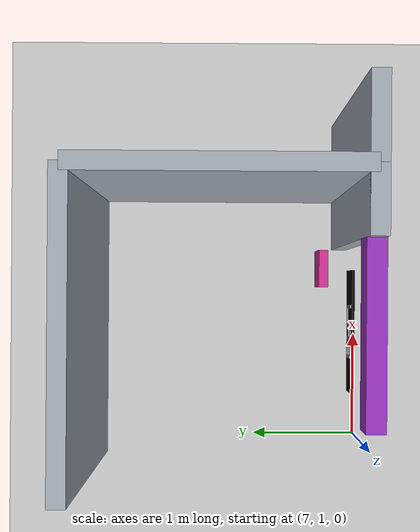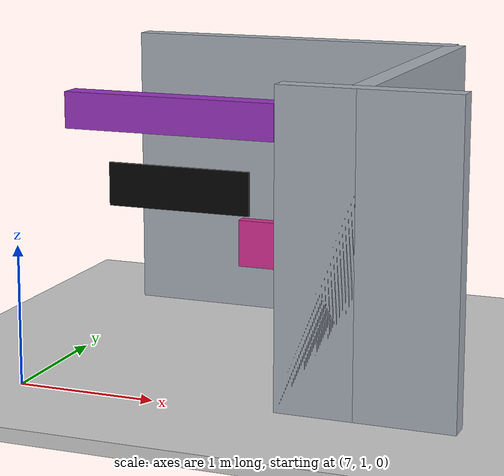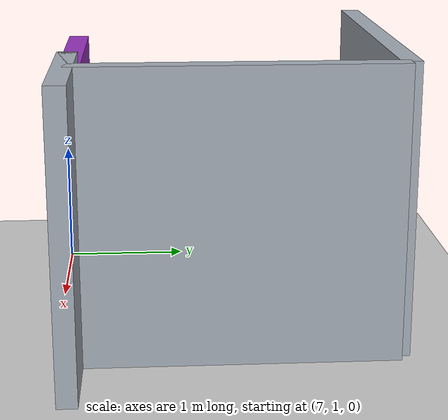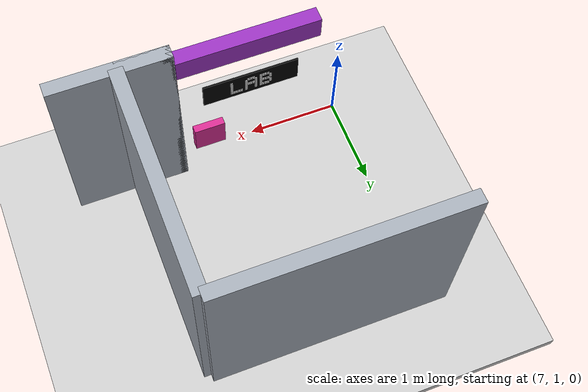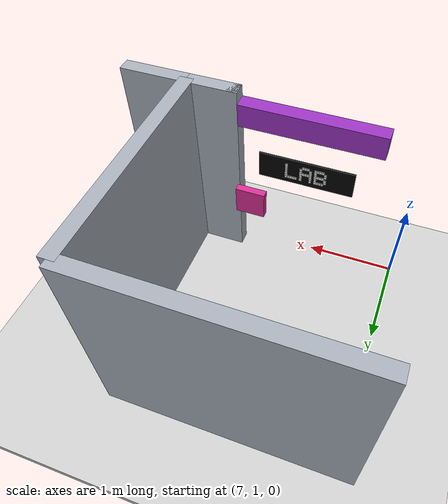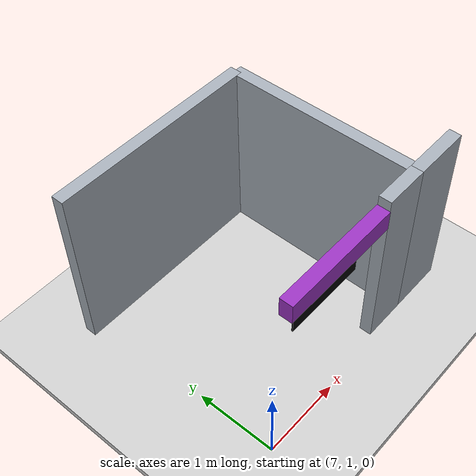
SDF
<sdf version="1.9">
 <world name="default">
  <model name="ground_plane">
   <static>true</static>
   <pose>5.05 0 -0.05 0 0 0</pose>
   <link name="body">
    <collision name="collision"><geometry><box><size>14.1 12 0.1</size></box></geometry></collision>
    <visual name="visual">
     <geometry><box><size>14.1 12 0.1</size></box></geometry>
     <material><ambient>0.8 0.8 0.8 1</ambient><diffuse>0.8 0.8 0.8 1</diffuse></material>
    </visual>
   </link>
  </model>
  <model name="room_1_2_1">
   <static>true</static>
   <pose>9.4 2.3499999999999996 1.1 0 0 0</pose>
   <link name="body">
    <collision name="collision"><geometry><box><size>0.15 2.4 2.2</size></box></geometry></collision>
    <visual name="visual">
     <geometry><box><size>0.15 2.4 2.2</size></box></geometry>
     <material><ambient>0.65 0.68 0.72 1</ambient><diffuse>0.65 0.68 0.72 1</diffuse></material>
    </visual>
   </link>
  </model>
  <model name="room_end_1_2">
   <static>true</static>
   <pose>8.1 3.55 1.1 0 0 0</pose>
   <link name="body">
    <collision name="collision"><geometry><box><size>2.6 0.15 2.2</size></box></geometry></collision>
    <visual name="visual">
     <geometry><box><size>2.6 0.15 2.2</size></box></geometry>
     <material><ambient>0.65 0.68 0.72 1</ambient><diffuse>0.65 0.68 0.72 1</diffuse></material>
    </visual>
   </link>
  </model>
  <model name="jamb_1_2_1">
   <static>true</static>
   <pose>9.125 1.15 1.1 0 0 0</pose>
   <link name="body">
    <collision name="collision"><geometry><box><size>0.55 0.15 2.2</size></box></geometry></collision>
    <visual name="visual">
     <geometry><box><size>0.55 0.15 2.2</size></box></geometry>
     <material><ambient>0.65 0.68 0.72 1</ambient><diffuse>0.65 0.68 0.72 1</diffuse></material>
    </visual>
   </link>
  </model>
  <model name="hall_end_1">
   <static>true</static>
   <pose>9.475 1.15 1.1 0 0 0</pose>
   <link name="body">
    <collision name="collision"><geometry><box><size>1.25 0.15 2.2</size></box></geometry></collision>
    <visual name="visual">
     <geometry><box><size>1.25 0.15 2.2</size></box></geometry>
     <material><ambient>0.65 0.68 0.72 1</ambient><diffuse>0.65 0.68 0.72 1</diffuse></material>
    </visual>
   </link>
  </model>
  <model name="r3geo_base_r003_left_2_lintel">
   <static>true</static>
   <pose>8.1 1.15 1.95 0 0 0</pose>
   <link name="body">
    <collision name="collision"><geometry><box><size>1.5 0.16 0.25</size></box></geometry></collision>
    <visual name="visual">
     <geometry><box><size>1.5 0.16 0.25</size></box></geometry>
     <material><ambient>0.6 0.2 0.75 1</ambient><diffuse>0.6 0.2 0.75 1</diffuse></material>
    </visual>
   </link>
  </model>
  <model name="r3geo_base_r003_left_2_entrance_sign">
   <static>true</static>
   <pose>8.629999999999999 1.45 1.05 0 0 0</pose>
   <link name="body">
    <visual name="visual">
     <geometry><box><size>0.32 0.08 0.32</size></box></geometry>
     <material><ambient>0.84 0.18 0.57 1</ambient><diffuse>0.84 0.18 0.57 1</diffuse></material>
    </visual>
   </link>
  </model>
  <model name="readable_r3geo_base_r003_left_2_entrance_room">
   <static>true</static>
   <pose>8.1 1.25 1.43 0 0 3.14159265359</pose>
   <link name="lettering">
    <visual name="backboard">
     <geometry><box><size>1.02 0.018 0.3</size></box></geometry>
     <material>
      <ambient>.015 .015 .015 1</ambient>
      <diffuse>.015 .015 .015 1</diffuse>
      <emissive>.015 .015 .015 1</emissive>
     </material>
     <cast_shadows>false</cast_shadows>
    </visual>
    <visual name="letter_0_0_0">
     <pose>-0.208 -0.014 0.078 0 0 0</pose>
     <geometry><box><size>0.024439999999999996 0.008 0.024439999999999996</size></box></geometry>
     <material>
      <ambient>.96 .96 .96 1</ambient>
      <diffuse>.96 .96 .96 1</diffuse>
      <emissive>.96 .96 .96 1</emissive>
     </material>
     <cast_shadows>false</cast_shadows>
    </visual>
    <visual name="letter_0_1_0">
     <pose>-0.208 -0.014 0.052 0 0 0</pose>
     <geometry><box><size>0.024439999999999996 0.008 0.024439999999999996</size></box></geometry>
     <material>
      <ambient>.96 .96 .96 1</ambient>
      <diffuse>.96 .96 .96 1</diffuse>
      <emissive>.96 .96 .96 1</emissive>
     </material>
     <cast_shadows>false</cast_shadows>
    </visual>
    <visual name="letter_0_2_0">
     <pose>-0.208 -0.014 0.026 0 0 0</pose>
     <geometry><box><size>0.024439999999999996 0.008 0.024439999999999996</size></box></geometry>
     <material>
      <ambient>.96 .96 .96 1</ambient>
      <diffuse>.96 .96 .96 1</diffuse>
      <emissive>.96 .96 .96 1</emissive>
     </material>
     <cast_shadows>false</cast_shadows>
    </visual>
    <visual name="letter_0_3_0">
     <pose>-0.208 -0.014 0 0 0 0</pose>
     <geometry><box><size>0.024439999999999996 0.008 0.024439999999999996</size></box></geometry>
     <material>
      <ambient>.96 .96 .96 1</ambient>
      <diffuse>.96 .96 .96 1</diffuse>
      <emissive>.96 .96 .96 1</emissive>
     </material>
     <cast_shadows>false</cast_shadows>
    </visual>
    <visual name="letter_0_4_0">
     <pose>-0.208 -0.014 -0.026 0 0 0</pose>
     <geometry><box><size>0.024439999999999996 0.008 0.024439999999999996</size></box></geometry>
     <material>
      <ambient>.96 .96 .96 1</ambient>
      <diffuse>.96 .96 .96 1</diffuse>
      <emissive>.96 .96 .96 1</emissive>
     </material>
     <cast_shadows>false</cast_shadows>
    </visual>
    <visual name="letter_0_5_0">
     <pose>-0.208 -0.014 -0.052 0 0 0</pose>
     <geometry><box><size>0.024439999999999996 0.008 0.024439999999999996</size></box></geometry>
     <material>
      <ambient>.96 .96 .96 1</ambient>
      <diffuse>.96 .96 .96 1</diffuse>
      <emissive>.96 .96 .96 1</emissive>
     </material>
     <cast_shadows>false</cast_shadows>
    </visual>
    <visual name="letter_0_6_0">
     <pose>-0.208 -0.014 -0.078 0 0 0</pose>
     <geometry><box><size>0.024439999999999996 0.008 0.024439999999999996</size></box></geometry>
     <material>
      <ambient>.96 .96 .96 1</ambient>
      <diffuse>.96 .96 .96 1</diffuse>
      <emissive>.96 .96 .96 1</emissive>
     </material>
     <cast_shadows>false</cast_shadows>
    </visual>
    <visual name="letter_0_6_1">
     <pose>-0.182 -0.014 -0.078 0 0 0</pose>
     <geometry><box><size>0.024439999999999996 0.008 0.024439999999999996</size></box></geometry>
     <material>
      <ambient>.96 .96 .96 1</ambient>
      <diffuse>.96 .96 .96 1</diffuse>
      <emissive>.96 .96 .96 1</emissive>
     </material>
     <cast_shadows>false</cast_shadows>
    </visual>
    <visual name="letter_0_6_2">
     <pose>-0.156 -0.014 -0.078 0 0 0</pose>
     <geometry><box><size>0.024439999999999996 0.008 0.024439999999999996</size></box></geometry>
     <material>
      <ambient>.96 .96 .96 1</ambient>
      <diffuse>.96 .96 .96 1</diffuse>
      <emissive>.96 .96 .96 1</emissive>
     </material>
     <cast_shadows>false</cast_shadows>
    </visual>
    <visual name="letter_0_6_3">
     <pose>-0.13 -0.014 -0.078 0 0 0</pose>
     <geometry><box><size>0.024439999999999996 0.008 0.024439999999999996</size></box></geometry>
     <material>
      <ambient>.96 .96 .96 1</ambient>
      <diffuse>.96 .96 .96 1</diffuse>
      <emissive>.96 .96 .96 1</emissive>
     </material>
     <cast_shadows>false</cast_shadows>
    </visual>
    <visual name="letter_0_6_4">
     <pose>-0.104 -0.014 -0.078 0 0 0</pose>
     <geometry><box><size>0.024439999999999996 0.008 0.024439999999999996</size></box></geometry>
     <material>
      <ambient>.96 .96 .96 1</ambient>
      <diffuse>.96 .96 .96 1</diffuse>
      <emissive>.96 .96 .96 1</emissive>
     </material>
     <cast_shadows>false</cast_shadows>
    </visual>
    <visual name="letter_1_0_1">
     <pose>-0.026 -0.014 0.078 0 0 0</pose>
     <geometry><box><size>0.024439999999999996 0.008 0.024439999999999996</size></box></geometry>
     <material>
      <ambient>.96 .96 .96 1</ambient>
      <diffuse>.96 .96 .96 1</diffuse>
      <emissive>.96 .96 .96 1</emissive>
     </material>
     <cast_shadows>false</cast_shadows>
    </visual>
    <visual name="letter_1_0_2">
     <pose>0 -0.014 0.078 0 0 0</pose>
     <geometry><box><size>0.024439999999999996 0.008 0.024439999999999996</size></box></geometry>
     <material>
      <ambient>.96 .96 .96 1</ambient>
      <diffuse>.96 .96 .96 1</diffuse>
      <emissive>.96 .96 .96 1</emissive>
     </material>
     <cast_shadows>false</cast_shadows>
    </visual>
    <visual name="letter_1_0_3">
     <pose>0.026 -0.014 0.078 0 0 0</pose>
     <geometry><box><size>0.024439999999999996 0.008 0.024439999999999996</size></box></geometry>
     <material>
      <ambient>.96 .96 .96 1</ambient>
      <diffuse>.96 .96 .96 1</diffuse>
      <emissive>.96 .96 .96 1</emissive>
     </material>
     <cast_shadows>false</cast_shadows>
    </visual>
    <visual name="letter_1_1_0">
     <pose>-0.052 -0.014 0.052 0 0 0</pose>
     <geometry><box><size>0.024439999999999996 0.008 0.024439999999999996</size></box></geometry>
     <material>
      <ambient>.96 .96 .96 1</ambient>
      <diffuse>.96 .96 .96 1</diffuse>
      <emissive>.96 .96 .96 1</emissive>
     </material>
     <cast_shadows>false</cast_shadows>
    </visual>
    <visual name="letter_1_1_4">
     <pose>0.052 -0.014 0.052 0 0 0</pose>
     <geometry><box><size>0.024439999999999996 0.008 0.024439999999999996</size></box></geometry>
     <material>
      <ambient>.96 .96 .96 1</ambient>
      <diffuse>.96 .96 .96 1</diffuse>
      <emissive>.96 .96 .96 1</emissive>
     </material>
     <cast_shadows>false</cast_shadows>
    </visual>
    <visual name="letter_1_2_0">
     <pose>-0.052 -0.014 0.026 0 0 0</pose>
     <geometry><box><size>0.024439999999999996 0.008 0.024439999999999996</size></box></geometry>
     <material>
      <ambient>.96 .96 .96 1</ambient>
      <diffuse>.96 .96 .96 1</diffuse>
      <emissive>.96 .96 .96 1</emissive>
     </material>
     <cast_shadows>false</cast_shadows>
    </visual>
    <visual name="letter_1_2_4">
     <pose>0.052 -0.014 0.026 0 0 0</pose>
     <geometry><box><size>0.024439999999999996 0.008 0.024439999999999996</size></box></geometry>
     <material>
      <ambient>.96 .96 .96 1</ambient>
      <diffuse>.96 .96 .96 1</diffuse>
      <emissive>.96 .96 .96 1</emissive>
     </material>
     <cast_shadows>false</cast_shadows>
    </visual>
    <visual name="letter_1_3_0">
     <pose>-0.052 -0.014 0 0 0 0</pose>
     <geometry><box><size>0.024439999999999996 0.008 0.024439999999999996</size></box></geometry>
     <material>
      <ambient>.96 .96 .96 1</ambient>
      <diffuse>.96 .96 .96 1</diffuse>
      <emissive>.96 .96 .96 1</emissive>
     </material>
     <cast_shadows>false</cast_shadows>
    </visual>
    <visual name="letter_1_3_1">
     <pose>-0.026 -0.014 0 0 0 0</pose>
     <geometry><box><size>0.024439999999999996 0.008 0.024439999999999996</size></box></geometry>
     <material>
      <ambient>.96 .96 .96 1</ambient>
      <diffuse>.96 .96 .96 1</diffuse>
      <emissive>.96 .96 .96 1</emissive>
     </material>
     <cast_shadows>false</cast_shadows>
    </visual>
    <visual name="letter_1_3_2">
     <pose>0 -0.014 0 0 0 0</pose>
     <geometry><box><size>0.024439999999999996 0.008 0.024439999999999996</size></box></geometry>
     <material>
      <ambient>.96 .96 .96 1</ambient>
      <diffuse>.96 .96 .96 1</diffuse>
      <emissive>.96 .96 .96 1</emissive>
     </material>
     <cast_shadows>false</cast_shadows>
    </visual>
    <visual name="letter_1_3_3">
     <pose>0.026 -0.014 0 0 0 0</pose>
     <geometry><box><size>0.024439999999999996 0.008 0.024439999999999996</size></box></geometry>
     <material>
      <ambient>.96 .96 .96 1</ambient>
      <diffuse>.96 .96 .96 1</diffuse>
      <emissive>.96 .96 .96 1</emissive>
     </material>
     <cast_shadows>false</cast_shadows>
    </visual>
    <visual name="letter_1_3_4">
     <pose>0.052 -0.014 0 0 0 0</pose>
     <geometry><box><size>0.024439999999999996 0.008 0.024439999999999996</size></box></geometry>
     <material>
      <ambient>.96 .96 .96 1</ambient>
      <diffuse>.96 .96 .96 1</diffuse>
      <emissive>.96 .96 .96 1</emissive>
     </material>
     <cast_shadows>false</cast_shadows>
    </visual>
    <visual name="letter_1_4_0">
     <pose>-0.052 -0.014 -0.026 0 0 0</pose>
     <geometry><box><size>0.024439999999999996 0.008 0.024439999999999996</size></box></geometry>
     <material>
      <ambient>.96 .96 .96 1</ambient>
      <diffuse>.96 .96 .96 1</diffuse>
      <emissive>.96 .96 .96 1</emissive>
     </material>
     <cast_shadows>false</cast_shadows>
    </visual>
    <visual name="letter_1_4_4">
     <pose>0.052 -0.014 -0.026 0 0 0</pose>
     <geometry><box><size>0.024439999999999996 0.008 0.024439999999999996</size></box></geometry>
     <material>
      <ambient>.96 .96 .96 1</ambient>
      <diffuse>.96 .96 .96 1</diffuse>
      <emissive>.96 .96 .96 1</emissive>
     </material>
     <cast_shadows>false</cast_shadows>
    </visual>
    <visual name="letter_1_5_0">
     <pose>-0.052 -0.014 -0.052 0 0 0</pose>
     <geometry><box><size>0.024439999999999996 0.008 0.024439999999999996</size></box></geometry>
     <material>
      <ambient>.96 .96 .96 1</ambient>
      <diffuse>.96 .96 .96 1</diffuse>
      <emissive>.96 .96 .96 1</emissive>
     </material>
     <cast_shadows>false</cast_shadows>
    </visual>
    <visual name="letter_1_5_4">
     <pose>0.052 -0.014 -0.052 0 0 0</pose>
     <geometry><box><size>0.024439999999999996 0.008 0.024439999999999996</size></box></geometry>
     <material>
      <ambient>.96 .96 .96 1</ambient>
      <diffuse>.96 .96 .96 1</diffuse>
      <emissive>.96 .96 .96 1</emissive>
     </material>
     <cast_shadows>false</cast_shadows>
    </visual>
    <visual name="letter_1_6_0">
     <pose>-0.052 -0.014 -0.078 0 0 0</pose>
     <geometry><box><size>0.024439999999999996 0.008 0.024439999999999996</size></box></geometry>
     <material>
      <ambient>.96 .96 .96 1</ambient>
      <diffuse>.96 .96 .96 1</diffuse>
      <emissive>.96 .96 .96 1</emissive>
     </material>
     <cast_shadows>false</cast_shadows>
    </visual>
    <visual name="letter_1_6_4">
     <pose>0.052 -0.014 -0.078 0 0 0</pose>
     <geometry><box><size>0.024439999999999996 0.008 0.024439999999999996</size></box></geometry>
     <material>
      <ambient>.96 .96 .96 1</ambient>
      <diffuse>.96 .96 .96 1</diffuse>
      <emissive>.96 .96 .96 1</emissive>
     </material>
     <cast_shadows>false</cast_shadows>
    </visual>
    <visual name="letter_2_0_0">
     <pose>0.104 -0.014 0.078 0 0 0</pose>
     <geometry><box><size>0.024439999999999996 0.008 0.024439999999999996</size></box></geometry>
     <material>
      <ambient>.96 .96 .96 1</ambient>
      <diffuse>.96 .96 .96 1</diffuse>
      <emissive>.96 .96 .96 1</emissive>
     </material>
     <cast_shadows>false</cast_shadows>
    </visual>
    <visual name="letter_2_0_1">
     <pose>0.13 -0.014 0.078 0 0 0</pose>
     <geometry><box><size>0.024439999999999996 0.008 0.024439999999999996</size></box></geometry>
     <material>
      <ambient>.96 .96 .96 1</ambient>
      <diffuse>.96 .96 .96 1</diffuse>
      <emissive>.96 .96 .96 1</emissive>
     </material>
     <cast_shadows>false</cast_shadows>
    </visual>
    <visual name="letter_2_0_2">
     <pose>0.156 -0.014 0.078 0 0 0</pose>
     <geometry><box><size>0.024439999999999996 0.008 0.024439999999999996</size></box></geometry>
     <material>
      <ambient>.96 .96 .96 1</ambient>
      <diffuse>.96 .96 .96 1</diffuse>
      <emissive>.96 .96 .96 1</emissive>
     </material>
     <cast_shadows>false</cast_shadows>
    </visual>
    <visual name="letter_2_0_3">
     <pose>0.182 -0.014 0.078 0 0 0</pose>
     <geometry><box><size>0.024439999999999996 0.008 0.024439999999999996</size></box></geometry>
     <material>
      <ambient>.96 .96 .96 1</ambient>
      <diffuse>.96 .96 .96 1</diffuse>
      <emissive>.96 .96 .96 1</emissive>
     </material>
     <cast_shadows>false</cast_shadows>
    </visual>
    <visual name="letter_2_1_0">
     <pose>0.104 -0.014 0.052 0 0 0</pose>
     <geometry><box><size>0.024439999999999996 0.008 0.024439999999999996</size></box></geometry>
     <material>
      <ambient>.96 .96 .96 1</ambient>
      <diffuse>.96 .96 .96 1</diffuse>
      <emissive>.96 .96 .96 1</emissive>
     </material>
     <cast_shadows>false</cast_shadows>
    </visual>
    <visual name="letter_2_1_4">
     <pose>0.208 -0.014 0.052 0 0 0</pose>
     <geometry><box><size>0.024439999999999996 0.008 0.024439999999999996</size></box></geometry>
     <material>
      <ambient>.96 .96 .96 1</ambient>
      <diffuse>.96 .96 .96 1</diffuse>
      <emissive>.96 .96 .96 1</emissive>
     </material>
     <cast_shadows>false</cast_shadows>
    </visual>
    <visual name="letter_2_2_0">
     <pose>0.104 -0.014 0.026 0 0 0</pose>
     <geometry><box><size>0.024439999999999996 0.008 0.024439999999999996</size></box></geometry>
     <material>
      <ambient>.96 .96 .96 1</ambient>
      <diffuse>.96 .96 .96 1</diffuse>
      <emissive>.96 .96 .96 1</emissive>
     </material>
     <cast_shadows>false</cast_shadows>
    </visual>
    <visual name="letter_2_2_4">
     <pose>0.208 -0.014 0.026 0 0 0</pose>
     <geometry><box><size>0.024439999999999996 0.008 0.024439999999999996</size></box></geometry>
     <material>
      <ambient>.96 .96 .96 1</ambient>
      <diffuse>.96 .96 .96 1</diffuse>
      <emissive>.96 .96 .96 1</emissive>
     </material>
     <cast_shadows>false</cast_shadows>
    </visual>
    <visual name="letter_2_3_0">
     <pose>0.104 -0.014 0 0 0 0</pose>
     <geometry><box><size>0.024439999999999996 0.008 0.024439999999999996</size></box></geometry>
     <material>
      <ambient>.96 .96 .96 1</ambient>
      <diffuse>.96 .96 .96 1</diffuse>
      <emissive>.96 .96 .96 1</emissive>
     </material>
     <cast_shadows>false</cast_shadows>
    </visual>
    <visual name="letter_2_3_1">
     <pose>0.13 -0.014 0 0 0 0</pose>
     <geometry><box><size>0.024439999999999996 0.008 0.024439999999999996</size></box></geometry>
     <material>
      <ambient>.96 .96 .96 1</ambient>
      <diffuse>.96 .96 .96 1</diffuse>
      <emissive>.96 .96 .96 1</emissive>
     </material>
     <cast_shadows>false</cast_shadows>
    </visual>
    <visual name="letter_2_3_2">
     <pose>0.156 -0.014 0 0 0 0</pose>
     <geometry><box><size>0.024439999999999996 0.008 0.024439999999999996</size></box></geometry>
     <material>
      <ambient>.96 .96 .96 1</ambient>
      <diffuse>.96 .96 .96 1</diffuse>
      <emissive>.96 .96 .96 1</emissive>
     </material>
     <cast_shadows>false</cast_shadows>
    </visual>
    <visual name="letter_2_3_3">
     <pose>0.182 -0.014 0 0 0 0</pose>
     <geometry><box><size>0.024439999999999996 0.008 0.024439999999999996</size></box></geometry>
     <material>
      <ambient>.96 .96 .96 1</ambient>
      <diffuse>.96 .96 .96 1</diffuse>
      <emissive>.96 .96 .96 1</emissive>
     </material>
     <cast_shadows>false</cast_shadows>
    </visual>
    <visual name="letter_2_4_0">
     <pose>0.104 -0.014 -0.026 0 0 0</pose>
     <geometry><box><size>0.024439999999999996 0.008 0.024439999999999996</size></box></geometry>
     <material>
      <ambient>.96 .96 .96 1</ambient>
      <diffuse>.96 .96 .96 1</diffuse>
      <emissive>.96 .96 .96 1</emissive>
     </material>
     <cast_shadows>false</cast_shadows>
    </visual>
    <visual name="letter_2_4_4">
     <pose>0.208 -0.014 -0.026 0 0 0</pose>
     <geometry><box><size>0.024439999999999996 0.008 0.024439999999999996</size></box></geometry>
     <material>
      <ambient>.96 .96 .96 1</ambient>
      <diffuse>.96 .96 .96 1</diffuse>
      <emissive>.96 .96 .96 1</emissive>
     </material>
     <cast_shadows>false</cast_shadows>
    </visual>
    <visual name="letter_2_5_0">
     <pose>0.104 -0.014 -0.052 0 0 0</pose>
     <geometry><box><size>0.024439999999999996 0.008 0.024439999999999996</size></box></geometry>
     <material>
      <ambient>.96 .96 .96 1</ambient>
      <diffuse>.96 .96 .96 1</diffuse>
      <emissive>.96 .96 .96 1</emissive>
     </material>
     <cast_shadows>false</cast_shadows>
    </visual>
    <visual name="letter_2_5_4">
     <pose>0.208 -0.014 -0.052 0 0 0</pose>
     <geometry><box><size>0.024439999999999996 0.008 0.024439999999999996</size></box></geometry>
     <material>
      <ambient>.96 .96 .96 1</ambient>
      <diffuse>.96 .96 .96 1</diffuse>
      <emissive>.96 .96 .96 1</emissive>
     </material>
     <cast_shadows>false</cast_shadows>
    </visual>
    <visual name="letter_2_6_0">
     <pose>0.104 -0.014 -0.078 0 0 0</pose>
     <geometry><box><size>0.024439999999999996 0.008 0.024439999999999996</size></box></geometry>
     <material>
      <ambient>.96 .96 .96 1</ambient>
      <diffuse>.96 .96 .96 1</diffuse>
      <emissive>.96 .96 .96 1</emissive>
     </material>
     <cast_shadows>false</cast_shadows>
    </visual>
    <visual name="letter_2_6_1">
     <pose>0.13 -0.014 -0.078 0 0 0</pose>
     <geometry><box><size>0.024439999999999996 0.008 0.024439999999999996</size></box></geometry>
     <material>
      <ambient>.96 .96 .96 1</ambient>
      <diffuse>.96 .96 .96 1</diffuse>
      <emissive>.96 .96 .96 1</emissive>
     </material>
     <cast_shadows>false</cast_shadows>
    </visual>
    <visual name="letter_2_6_2">
     <pose>0.156 -0.014 -0.078 0 0 0</pose>
     <geometry><box><size>0.024439999999999996 0.008 0.024439999999999996</size></box></geometry>
     <material>
      <ambient>.96 .96 .96 1</ambient>
      <diffuse>.96 .96 .96 1</diffuse>
      <emissive>.96 .96 .96 1</emissive>
     </material>
     <cast_shadows>false</cast_shadows>
    </visual>
    <visual name="letter_2_6_3">
     <pose>0.182 -0.014 -0.078 0 0 0</pose>
     <geometry><box><size>0.024439999999999996 0.008 0.024439999999999996</size></box></geometry>
     <material>
      <ambient>.96 .96 .96 1</ambient>
      <diffuse>.96 .96 .96 1</diffuse>
      <emissive>.96 .96 .96 1</emissive>
     </material>
     <cast_shadows>false</cast_shadows>
    </visual>
   </link>
  </model>
 </world>
</sdf>
